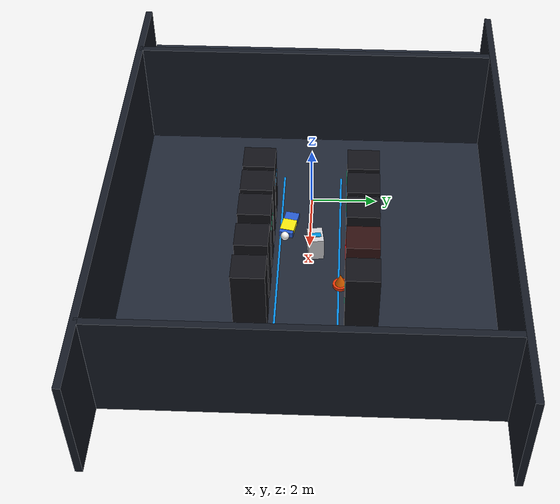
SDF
<?xml version="1.0"?>
<sdf version="1.9">
  <world name="phoenix_datacenter_world">
    <gravity>0 0 -9.81</gravity>
    <plugin filename="gz-sim-physics-system" name="gz::sim::systems::Physics"/>
    <plugin filename="gz-sim-sensors-system" name="gz::sim::systems::Sensors">
      <render_engine>ogre2</render_engine>
    </plugin>
    <plugin filename="gz-sim-scene-broadcaster-system" name="gz::sim::systems::SceneBroadcaster"/>
    <plugin filename="gz-sim-user-commands-system" name="gz::sim::systems::UserCommands"/>

    <!-- Ambient Datacenter Lighting: Cool Slate Blue & Dark Grid -->
    <scene>
      <ambient>0.15 0.18 0.25 1.0</ambient>
      <background>0.05 0.07 0.10 1.0</background>
      <grid>false</grid>
    </scene>

    <!-- Overhead Cool-White Aisle Strip Lighting -->
    <light type="spot" name="aisle_spot_1">
      <pose>1.5 0 3.2 0 0 0</pose>
      <diffuse>0.85 0.92 1.0 1.0</diffuse>
      <specular>0.4 0.4 0.5 1.0</specular>
      <attenuation><range>8.0</range><constant>0.6</constant><linear>0.08</linear></attenuation>
      <spot><inner_angle>0.8</inner_angle><outer_angle>1.4</outer_angle><falloff>1.0</falloff></spot>
      <direction>0 0 -1</direction>
    </light>
    <light type="spot" name="aisle_spot_2">
      <pose>4.0 0 3.2 0 0 0</pose>
      <diffuse>0.85 0.92 1.0 1.0</diffuse>
      <specular>0.4 0.4 0.5 1.0</specular>
      <attenuation><range>8.0</range><constant>0.6</constant><linear>0.08</linear></attenuation>
      <spot><inner_angle>0.8</inner_angle><outer_angle>1.4</outer_angle><falloff>1.0</falloff></spot>
      <direction>0 0 -1</direction>
    </light>

    <!-- Thermal Hazard Warning Glow (Pulsing Orange Light from Fire) -->
    <light type="point" name="fire_heat_glow">
      <pose>4.0 1.0 0.8 0 0 0</pose>
      <diffuse>1.0 0.45 0.08 1.0</diffuse>
      <specular>0.8 0.3 0.0 1.0</specular>
      <attenuation><range>6.0</range><constant>0.4</constant><linear>0.15</linear><quadratic>0.05</quadratic></attenuation>
    </light>

    <!-- High-Tech Anti-Static Datacenter Floor -->
    <model name="datacenter_floor">
      <static>true</static>
      <link name="link">
        <collision name="collision">
          <geometry><plane><normal>0 0 1</normal><size>16 12</size></plane></geometry>
        </collision>
        <visual name="floor_surface">
          <geometry><plane><normal>0 0 1</normal><size>16 12</size></plane></geometry>
          <material>
            <ambient>0.08 0.10 0.14 1.0</ambient>
            <diffuse>0.12 0.15 0.20 1.0</diffuse>
            <specular>0.35 0.35 0.40 1.0</specular>
          </material>
        </visual>
        <!-- Aisle Safety Perimeter Striping (Cyber Blue) -->
        <visual name="aisle_border_left">
          <pose>2.5 0.9 0.001 0 0 0</pose>
          <geometry><box><size>7.0 0.06 0.002</size></box></geometry>
          <material>
            <ambient>0.02 0.55 0.90 1.0</ambient>
            <diffuse>0.02 0.55 0.90 1.0</diffuse>
            <emissive>0.01 0.35 0.65 1.0</emissive>
          </material>
        </visual>
        <visual name="aisle_border_right">
          <pose>2.5 -0.9 0.001 0 0 0</pose>
          <geometry><box><size>7.0 0.06 0.002</size></box></geometry>
          <material>
            <ambient>0.02 0.55 0.90 1.0</ambient>
            <diffuse>0.02 0.55 0.90 1.0</diffuse>
            <emissive>0.01 0.35 0.65 1.0</emissive>
          </material>
        </visual>
      </link>
    </model>

    <!-- Outer Architectural Enclosure Walls -->
    <model name="north_wall">
      <static>true</static>
      <pose>2.5 5.5 1.75 0 0 0</pose>
      <link name="link">
        <collision name="col"><geometry><box><size>15 0.2 3.5</size></box></geometry></collision>
        <visual name="vis"><geometry><box><size>15 0.2 3.5</size></box></geometry>
          <material><ambient>0.06 0.08 0.11 1</ambient><diffuse>0.08 0.10 0.14 1</diffuse></material>
        </visual>
      </link>
    </model>
    <model name="south_wall">
      <static>true</static>
      <pose>2.5 -5.5 1.75 0 0 0</pose>
      <link name="link">
        <collision name="col"><geometry><box><size>15 0.2 3.5</size></box></geometry></collision>
        <visual name="vis"><geometry><box><size>15 0.2 3.5</size></box></geometry>
          <material><ambient>0.06 0.08 0.11 1</ambient><diffuse>0.08 0.10 0.14 1</diffuse></material>
        </visual>
      </link>
    </model>
    <model name="east_wall">
      <static>true</static>
      <pose>8.0 0 1.75 0 0 1.5708</pose>
      <link name="link">
        <collision name="col"><geometry><box><size>11 0.2 3.5</size></box></geometry></collision>
        <visual name="vis"><geometry><box><size>11 0.2 3.5</size></box></geometry>
          <material><ambient>0.06 0.08 0.11 1</ambient><diffuse>0.08 0.10 0.14 1</diffuse></material>
        </visual>
      </link>
    </model>
    <model name="west_wall">
      <static>true</static>
      <pose>-3.0 0 1.75 0 0 1.5708</pose>
      <link name="link">
        <collision name="col"><geometry><box><size>11 0.2 3.5</size></box></geometry></collision>
        <visual name="vis"><geometry><box><size>11 0.2 3.5</size></box></geometry>
          <material><ambient>0.06 0.08 0.11 1</ambient><diffuse>0.08 0.10 0.14 1</diffuse></material>
        </visual>
      </link>
    </model>

    <!-- Server Rack 1 -->
    <model name="server_rack_A1">
      <static>true</static>
      <pose>0.5 1.55 1.1 0 0 0</pose>
      <link name="link">
        <collision name="col"><geometry><box><size>0.85 0.95 2.2</size></box></geometry></collision>
        <visual name="cabinet"><geometry><box><size>0.85 0.95 2.2</size></box></geometry>
          <material><ambient>0.04 0.04 0.05 1</ambient><diffuse>0.07 0.07 0.09 1</diffuse><specular>0.4 0.4 0.4 1</specular></material>
        </visual>
        <!-- Server Faceplates & Blinking Status LEDs -->
        <visual name="led_strip"><pose>0 -0.48 0.4 0 0 0</pose><geometry><box><size>0.7 0.01 0.03</size></box></geometry>
          <material><ambient>0 0.8 0.5 1</ambient><diffuse>0 0.8 0.5 1</diffuse><emissive>0 0.8 0.5 1</emissive></material>
        </visual>
        <visual name="led_strip2"><pose>0 -0.48 -0.2 0 0 0</pose><geometry><box><size>0.7 0.01 0.03</size></box></geometry>
          <material><ambient>0.02 0.55 0.9 1</ambient><diffuse>0.02 0.55 0.9 1</diffuse><emissive>0.02 0.55 0.9 1</emissive></material>
        </visual>
      </link>
    </model>

    <!-- Server Rack 2 -->
    <model name="server_rack_A2">
      <static>true</static>
      <pose>1.5 1.55 1.1 0 0 0</pose>
      <link name="link">
        <collision name="col"><geometry><box><size>0.85 0.95 2.2</size></box></geometry></collision>
        <visual name="cabinet"><geometry><box><size>0.85 0.95 2.2</size></box></geometry>
          <material><ambient>0.04 0.04 0.05 1</ambient><diffuse>0.07 0.07 0.09 1</diffuse><specular>0.4 0.4 0.4 1</specular></material>
        </visual>
        <visual name="led_strip"><pose>0 -0.48 0.2 0 0 0</pose><geometry><box><size>0.7 0.01 0.03</size></box></geometry>
          <material><ambient>0 0.8 0.5 1</ambient><diffuse>0 0.8 0.5 1</diffuse><emissive>0 0.8 0.5 1</emissive></material>
        </visual>
      </link>
    </model>

    <!-- Server Rack 3 -->
    <model name="server_rack_A3">
      <static>true</static>
      <pose>2.5 1.55 1.1 0 0 0</pose>
      <link name="link">
        <collision name="col"><geometry><box><size>0.85 0.95 2.2</size></box></geometry></collision>
        <visual name="cabinet"><geometry><box><size>0.85 0.95 2.2</size></box></geometry>
          <material><ambient>0.04 0.04 0.05 1</ambient><diffuse>0.07 0.07 0.09 1</diffuse><specular>0.4 0.4 0.4 1</specular></material>
        </visual>
        <visual name="led_strip"><pose>0 -0.48 0.5 0 0 0</pose><geometry><box><size>0.7 0.01 0.03</size></box></geometry>
          <material><ambient>0.02 0.55 0.9 1</ambient><diffuse>0.02 0.55 0.9 1</diffuse><emissive>0.02 0.55 0.9 1</emissive></material>
        </visual>
      </link>
    </model>

    <!-- Server Rack 4: INCIDENT LOCATION (Thermal Runaway Cabinet) -->
    <model name="server_rack_A4_incident">
      <static>true</static>
      <pose>3.7 1.55 1.1 0 0 0</pose>
      <link name="link">
        <collision name="col"><geometry><box><size>0.85 0.95 2.2</size></box></geometry></collision>
        <visual name="cabinet"><geometry><box><size>0.85 0.95 2.2</size></box></geometry>
          <material><ambient>0.15 0.05 0.05 1</ambient><diffuse>0.18 0.06 0.06 1</diffuse><specular>0.5 0.2 0.2 1</specular></material>
        </visual>
        <!-- Critical Thermal Alarm Bar -->
        <visual name="alarm_led"><pose>0 -0.48 0.6 0 0 0</pose><geometry><box><size>0.75 0.02 0.06</size></box></geometry>
          <material><ambient>1 0.1 0.1 1</ambient><diffuse>1 0.1 0.1 1</diffuse><emissive>1 0.1 0.1 1</emissive></material>
        </visual>
      </link>
    </model>

    <!-- Server Rack 5 -->
    <model name="server_rack_A5">
      <static>true</static>
      <pose>4.9 1.55 1.1 0 0 0</pose>
      <link name="link">
        <collision name="col"><geometry><box><size>0.85 0.95 2.2</size></box></geometry></collision>
        <visual name="cabinet"><geometry><box><size>0.85 0.95 2.2</size></box></geometry>
          <material><ambient>0.04 0.04 0.05 1</ambient><diffuse>0.07 0.07 0.09 1</diffuse><specular>0.4 0.4 0.4 1</specular></material>
        </visual>
        <visual name="led_strip"><pose>0 -0.48 0.1 0 0 0</pose><geometry><box><size>0.7 0.01 0.03</size></box></geometry>
          <material><ambient>0 0.8 0.5 1</ambient><diffuse>0 0.8 0.5 1</diffuse><emissive>0 0.8 0.5 1</emissive></material>
        </visual>
      </link>
    </model>

    <model name="server_rack_B1">
      <static>true</static>
      <pose>0.5 -1.55 1.1 0 0 0</pose>
      <link name="link">
        <collision name="col"><geometry><box><size>0.85 0.95 2.2</size></box></geometry></collision>
        <visual name="cabinet"><geometry><box><size>0.85 0.95 2.2</size></box></geometry>
          <material><ambient>0.04 0.04 0.05 1</ambient><diffuse>0.07 0.07 0.09 1</diffuse></material>
        </visual>
        <visual name="led"><pose>0 0.48 0.3 0 0 0</pose><geometry><box><size>0.7 0.01 0.03</size></box></geometry>
          <material><ambient>0.02 0.55 0.9 1</ambient><diffuse>0.02 0.55 0.9 1</diffuse><emissive>0.02 0.55 0.9 1</emissive></material>
        </visual>
      </link>
    </model>

    <model name="server_rack_B2">
      <static>true</static>
      <pose>1.5 -1.55 1.1 0 0 0</pose>
      <link name="link">
        <collision name="col"><geometry><box><size>0.85 0.95 2.2</size></box></geometry></collision>
        <visual name="cabinet"><geometry><box><size>0.85 0.95 2.2</size></box></geometry>
          <material><ambient>0.04 0.04 0.05 1</ambient><diffuse>0.07 0.07 0.09 1</diffuse></material>
        </visual>
      </link>
    </model>

    <model name="server_rack_B3">
      <static>true</static>
      <pose>2.5 -1.55 1.1 0 0 0</pose>
      <link name="link">
        <collision name="col"><geometry><box><size>0.85 0.95 2.2</size></box></geometry></collision>
        <visual name="cabinet"><geometry><box><size>0.85 0.95 2.2</size></box></geometry>
          <material><ambient>0.04 0.04 0.05 1</ambient><diffuse>0.07 0.07 0.09 1</diffuse></material>
        </visual>
        <visual name="led"><pose>0 0.48 0.4 0 0 0</pose><geometry><box><size>0.7 0.01 0.03</size></box></geometry>
          <material><ambient>0 0.8 0.5 1</ambient><diffuse>0 0.8 0.5 1</diffuse><emissive>0 0.8 0.5 1</emissive></material>
        </visual>
      </link>
    </model>

    <model name="server_rack_B4">
      <static>true</static>
      <pose>3.7 -1.55 1.1 0 0 0</pose>
      <link name="link">
        <collision name="col"><geometry><box><size>0.85 0.95 2.2</size></box></geometry></collision>
        <visual name="cabinet"><geometry><box><size>0.85 0.95 2.2</size></box></geometry>
          <material><ambient>0.04 0.04 0.05 1</ambient><diffuse>0.07 0.07 0.09 1</diffuse></material>
        </visual>
      </link>
    </model>

    <model name="server_rack_B5">
      <static>true</static>
      <pose>4.9 -1.55 1.1 0 0 0</pose>
      <link name="link">
        <collision name="col"><geometry><box><size>0.85 0.95 2.2</size></box></geometry></collision>
        <visual name="cabinet"><geometry><box><size>0.85 0.95 2.2</size></box></geometry>
          <material><ambient>0.04 0.04 0.05 1</ambient><diffuse>0.07 0.07 0.09 1</diffuse></material>
        </visual>
      </link>
    </model>

    <model name="maintenance_cart">
      <static>true</static>
      <pose>2.3 0.18 0.42 0 0 0.15</pose>
      <link name="link">
        <collision name="col_body"><geometry><box><size>0.55 0.45 0.80</size></box></geometry></collision>
        <!-- Shelf Frames -->
        <visual name="cart_body"><geometry><box><size>0.55 0.45 0.76</size></box></geometry>
          <material><ambient>0.7 0.7 0.72 1</ambient><diffuse>0.8 0.8 0.82 1</diffuse><specular>0.9 0.9 0.9 1</specular></material>
        </visual>
        <!-- Crash-Cart Laptop Screen (Active Diagnostic) -->
        <visual name="laptop_screen"><pose>0.05 0 0.42 0 -0.3 0</pose><geometry><box><size>0.24 0.32 0.015</size></box></geometry>
          <material><ambient>0 0.6 0.9 1</ambient><diffuse>0 0.6 0.9 1</diffuse><emissive>0 0.6 0.9 1</emissive></material>
        </visual>
      </link>
    </model>

    <model name="technician_casualty">
      <static>true</static>
      <pose>1.2 -0.65 0.08 0 0 -0.2</pose>
      <link name="link">
        <!-- Body: Blue Safety Jumpsuit -->
        <visual name="body"><pose>0 0 0 0 0 0</pose><geometry><box><size>0.90 0.42 0.18</size></box></geometry>
          <material><ambient>0.10 0.25 0.65 1</ambient><diffuse>0.15 0.35 0.80 1</diffuse></material>
        </visual>
        <!-- High-Visibility Safety Vest -->
        <visual name="vest"><pose>0.1 0 0.02 0 0 0</pose><geometry><box><size>0.45 0.43 0.17</size></box></geometry>
          <material><ambient>0.9 0.85 0.05 1</ambient><diffuse>0.95 0.9 0.05 1</diffuse><emissive>0.4 0.4 0.0 1</emissive></material>
        </visual>
        <!-- Head & Safety Helmet -->
        <visual name="helmet"><pose>0.55 0 0.05 0 0 0</pose><geometry><sphere><radius>0.13</radius></sphere></geometry>
          <material><ambient>1 1 1 1</ambient><diffuse>1 1 1 1</diffuse></material>
        </visual>
      </link>
    </model>

    <model name="fire_target">
      <static>true</static>
      <pose>3.7 0.95 0.35 0 0 0</pose>
      <link name="link">

        <!-- Core Emissive Flame (Layer 1 - White Hot Center) -->
        <visual name="flame_core">
          <pose>0 0 0.1 0 0 0</pose>
          <geometry><cone><radius>0.08</radius><length>0.35</length></cone></geometry>
          <material>
            <ambient>1.0 0.95 0.6 1.0</ambient>
            <diffuse>1.0 0.95 0.6 1.0</diffuse>
            <emissive>1.0 0.95 0.7 1.0</emissive>
          </material>
        </visual>

        <!-- Outer Flame Flare (Layer 2 - Molten Orange) -->
        <visual name="flame_outer">
          <pose>0 0 0.05 0 0 0</pose>
          <geometry><cone><radius>0.18</radius><length>0.45</length></cone></geometry>
          <material>
            <ambient>1.0 0.45 0.0 1.0</ambient>
            <diffuse>1.0 0.45 0.0 1.0</diffuse>
            <emissive>0.98 0.40 0.0 1.0</emissive>
          </material>
        </visual>

        <!-- Thermal Plume Base (Layer 3 - Burning Carbon Ember) -->
        <visual name="ember_base">
          <pose>0 0 -0.15 0 0 0</pose>
          <geometry><cylinder><radius>0.22</radius><length>0.10</length></cylinder></geometry>
          <material>
            <ambient>0.85 0.15 0.02 1.0</ambient>
            <diffuse>0.9 0.2 0.02 1.0</diffuse>
            <emissive>0.7 0.1 0.0 1.0</emissive>
          </material>
        </visual>
      </link>
    </model>

    <!-- ArUco Spatial Calibration Target Board on East Wall -->
    <model name="aruco_marker_board">
      <static>true</static>
      <pose>7.88 0 1.5 0 0 0</pose>
      <link name="link">
        <visual name="board"><geometry><box><size>0.02 0.6 0.6</size></box></geometry>
          <material><ambient>1 1 1 1</ambient><diffuse>1 1 1 1</diffuse></material>
        </visual>
        <visual name="marker_black"><pose>-0.01 0 0 0 0 0</pose><geometry><box><size>0.02 0.45 0.45</size></box></geometry>
          <material><ambient>0 0 0 1</ambient><diffuse>0 0 0 1</diffuse></material>
        </visual>
        <visual name="marker_center"><pose>-0.015 0 0 0 0 0</pose><geometry><box><size>0.02 0.22 0.22</size></box></geometry>
          <material><ambient>1 1 1 1</ambient><diffuse>1 1 1 1</diffuse></material>
        </visual>
      </link>
    </model>
  </world>
</sdf>
